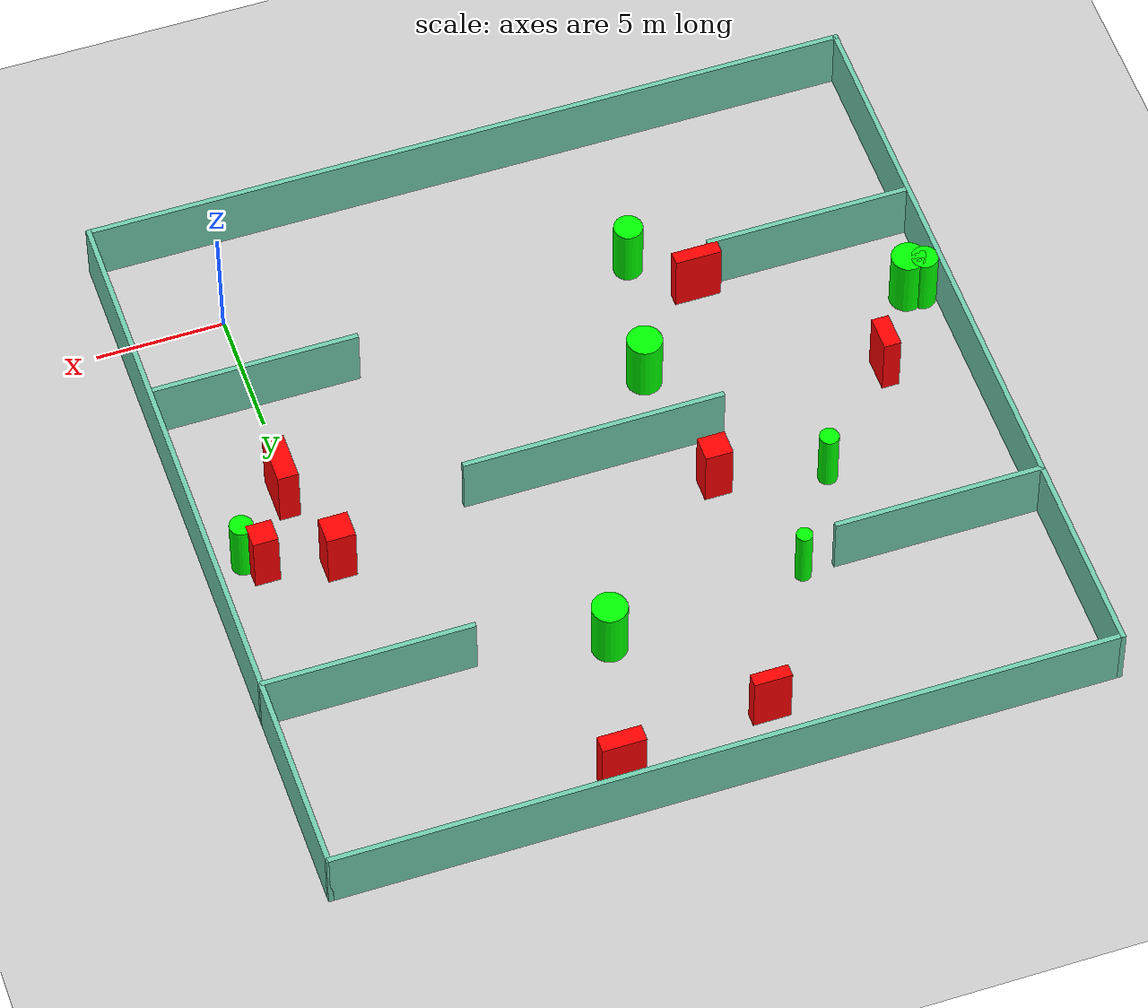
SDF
<sdf version="1.7">
 <world name="default">
  <light name="sun" type="directional">
   <pose>0 0 10 0 -0 0</pose>
   <diffuse>0.8 0.8 0.8 1</diffuse>
   <specular>0.2 0.2 0.2 1</specular>
   <attenuation>
    <range>1000</range>
    <constant>0.9</constant>
    <linear>0.01</linear>
    <quadratic>0.001</quadratic>
   </attenuation>
   <direction>-0.5 0.1 -0.9</direction>
   <spot><inner_angle>0</inner_angle><outer_angle>0</outer_angle><falloff>0</falloff></spot>
  </light>
  <model name="ground_plane">
   <static>1</static>
   <link name="link">
    <collision name="collision">
     <geometry><plane><normal>0 0 1</normal><size>100 100</size></plane></geometry>
     <surface>
      <contact><collide_bitmask>65535</collide_bitmask></contact>
      <friction><ode><mu>100</mu><mu2>50</mu2></ode></friction>
     </surface>
    </collision>
    <visual name="visual">
     <cast_shadows>0</cast_shadows>
     <geometry><plane><normal>0 0 1</normal><size>100 100</size></plane></geometry>
     <material>
      <script><uri>file://media/materials/scripts/gazebo.material</uri><name>Gazebo/Grey</name></script>
     </material>
    </visual>
   </link>
  </model>
  <gravity>0 0 -9.8</gravity>
  <magnetic_field>6e-06 2.3e-05 -4.2e-05</magnetic_field>
  <atmosphere type="adiabatic"/>
  <physics type="ode">
   <max_step_size>0.001</max_step_size>
   <real_time_factor>1</real_time_factor>
   <real_time_update_rate>1000</real_time_update_rate>
  </physics>
  <scene><ambient>0.4 0.4 0.4 1</ambient><background>0.7 0.7 0.7 1</background><shadows>1</shadows></scene>
  <spherical_coordinates>
   <surface_model>EARTH_WGS84</surface_model>
   <latitude_deg>0</latitude_deg>
   <longitude_deg>0</longitude_deg>
   <elevation>0</elevation>
   <heading_deg>0</heading_deg>
  </spherical_coordinates>
  <model name="my_base_walls">
   <link name="Wall_10">
    <collision name="Wall_10_Collision">
     <geometry><box><size>8.2 0.2 2.5</size></box></geometry>
     <pose>0 0 1.25 0 -0 0</pose>
    </collision>
    <visual name="Wall_10_Visual">
     <pose>0 0 1.25 0 -0 0</pose>
     <geometry><box><size>8.2 0.2 2.5</size></box></geometry>
     <material>
      <script><uri>file://media/materials/scripts/gazebo.material</uri><name>Gazebo/Grey</name></script>
      <ambient>0.435294 0.796078 0.67451 1</ambient>
     </material>
     <meta><layer>0</layer></meta>
    </visual>
    <pose>-11 -7 0 0 -0 0</pose>
   </link>
   <link name="Wall_12">
    <collision name="Wall_12_Collision">
     <geometry><box><size>8.2 0.2 2.5</size></box></geometry>
     <pose>0 0 1.25 0 -0 0</pose>
    </collision>
    <visual name="Wall_12_Visual">
     <pose>0 0 1.25 0 -0 0</pose>
     <geometry><box><size>8.2 0.2 2.5</size></box></geometry>
     <material>
      <script><uri>file://media/materials/scripts/gazebo.material</uri><name>Gazebo/Grey</name></script>
      <ambient>0.435294 0.796078 0.67451 1</ambient>
     </material>
     <meta><layer>0</layer></meta>
    </visual>
    <pose>-11 7 0 0 -0 0</pose>
   </link>
   <link name="Wall_14">
    <collision name="Wall_14_Collision">
     <geometry><box><size>8.2 0.2 2.5</size></box></geometry>
     <pose>0 0 1.25 0 -0 0</pose>
    </collision>
    <visual name="Wall_14_Visual">
     <pose>0 0 1.25 0 -0 0</pose>
     <geometry><box><size>8.2 0.2 2.5</size></box></geometry>
     <material>
      <script><uri>file://media/materials/scripts/gazebo.material</uri><name>Gazebo/Grey</name></script>
      <ambient>0.435294 0.796078 0.67451 1</ambient>
     </material>
     <meta><layer>0</layer></meta>
    </visual>
    <pose>11 7 0 0 -0 3.14159</pose>
   </link>
   <link name="Wall_16">
    <collision name="Wall_16_Collision">
     <geometry><box><size>10.2 0.2 2.5</size></box></geometry>
     <pose>0 0 1.25 0 -0 0</pose>
    </collision>
    <visual name="Wall_16_Visual">
     <pose>0 0 1.25 0 -0 0</pose>
     <geometry><box><size>10.2 0.2 2.5</size></box></geometry>
     <material>
      <script><uri>file://media/materials/scripts/gazebo.material</uri><name>Gazebo/Grey</name></script>
      <ambient>0.435294 0.796078 0.67451 1</ambient>
     </material>
     <meta><layer>0</layer></meta>
    </visual>
    <pose>0 0 0 0 -0 3.14159</pose>
   </link>
   <link name="Wall_2">
    <collision name="Wall_2_Collision">
     <geometry><box><size>30.2 0.2 2.5</size></box></geometry>
     <pose>0 0 1.25 0 -0 0</pose>
    </collision>
    <visual name="Wall_2_Visual">
     <pose>0 0 1.25 0 -0 0</pose>
     <geometry><box><size>30.2 0.2 2.5</size></box></geometry>
     <material>
      <script><uri>file://media/materials/scripts/gazebo.material</uri><name>Gazebo/Grey</name></script>
      <ambient>0.435294 0.796078 0.67451 1</ambient>
     </material>
     <meta><layer>0</layer></meta>
    </visual>
    <pose>0 -15 0 0 -0 3.14159</pose>
   </link>
   <link name="Wall_3">
    <collision name="Wall_3_Collision">
     <geometry><box><size>30.2 0.2 2.5</size></box></geometry>
     <pose>0 0 1.25 0 -0 0</pose>
    </collision>
    <visual name="Wall_3_Visual">
     <pose>0 0 1.25 0 -0 0</pose>
     <geometry><box><size>30.2 0.2 2.5</size></box></geometry>
     <material>
      <script><uri>file://media/materials/scripts/gazebo.material</uri><name>Gazebo/Grey</name></script>
      <ambient>0.435294 0.796078 0.67451 1</ambient>
     </material>
     <meta><layer>0</layer></meta>
    </visual>
    <pose>-15 0 0 0 -0 1.5708</pose>
   </link>
   <link name="Wall_4">
    <collision name="Wall_4_Collision">
     <geometry><box><size>30.2 0.2 2.5</size></box></geometry>
     <pose>0 0 1.25 0 -0 0</pose>
    </collision>
    <visual name="Wall_4_Visual">
     <pose>0 0 1.25 0 -0 0</pose>
     <geometry><box><size>30.2 0.2 2.5</size></box></geometry>
     <material>
      <script><uri>file://media/materials/scripts/gazebo.material</uri><name>Gazebo/Grey</name></script>
      <ambient>0.435294 0.796078 0.67451 1</ambient>
     </material>
     <meta><layer>0</layer></meta>
    </visual>
    <pose>0 15 0 0 -0 0</pose>
   </link>
   <link name="Wall_6">
    <collision name="Wall_6_Collision">
     <geometry><box><size>30.2 0.2 2.5</size></box></geometry>
     <pose>0 0 1.25 0 -0 0</pose>
    </collision>
    <visual name="Wall_6_Visual">
     <pose>0 0 1.25 0 -0 0</pose>
     <geometry><box><size>30.2 0.2 2.5</size></box></geometry>
     <material>
      <script><uri>file://media/materials/scripts/gazebo.material</uri><name>Gazebo/Grey</name></script>
      <ambient>0.435294 0.796078 0.67451 1</ambient>
     </material>
     <meta><layer>0</layer></meta>
    </visual>
    <pose>15 0 0 0 -0 1.5708</pose>
   </link>
   <link name="Wall_8">
    <collision name="Wall_8_Collision">
     <geometry><box><size>8.2 0.2 2.5</size></box></geometry>
     <pose>0 0 1.25 0 -0 0</pose>
    </collision>
    <visual name="Wall_8_Visual">
     <pose>0 0 1.25 0 -0 0</pose>
     <geometry><box><size>8.2 0.2 2.5</size></box></geometry>
     <material>
      <script><uri>file://media/materials/scripts/gazebo.material</uri><name>Gazebo/Grey</name></script>
      <ambient>0.435294 0.796078 0.67451 1</ambient>
     </material>
     <meta><layer>0</layer></meta>
    </visual>
    <pose>11 -7 0 0 -0 3.14159</pose>
   </link>
   <static>1</static>
   <pose>-11 11 0 0 -0 0</pose>
  </model>
  <model name="cylinder1">
   <static>1</static>
   <link name="link">
    <inertial>
     <mass>1</mass>
     <inertia><ixx>0.5</ixx><ixy>0</ixy><ixz>0</ixz><iyy>0.5</iyy><iyz>0</iyz><izz>1</izz></inertia>
    </inertial>
    <collision name="collision">
     <geometry><cylinder><radius>0.5656825271723132</radius><length>2.5</length></cylinder></geometry>
    </collision>
    <visual name="visual">
     <geometry><cylinder><radius>0.5656825271723132</radius><length>2.5</length></cylinder></geometry>
     <material>
      <ambient>0 1 0 1</ambient>
      <diffuse>0 1 0 1</diffuse>
      <specular>0.1 0.1 0.1 1</specular>
      <emissive>0 0 0 0</emissive>
     </material>
    </visual>
   </link>
   <pose>-15.334207022480596 2.3591838863992667 1.25 0 0 0</pose>
  </model>
  <model name="cylinder2">
   <static>1</static>
   <link name="link">
    <inertial>
     <mass>1</mass>
     <inertia><ixx>0.5</ixx><ixy>0</ixy><ixz>0</ixz><iyy>0.5</iyy><iyz>0</iyz><izz>1</izz></inertia>
    </inertial>
    <collision name="collision">
     <geometry><cylinder><radius>0.4542302674744778</radius><length>2.5</length></cylinder></geometry>
    </collision>
    <visual name="visual">
     <geometry><cylinder><radius>0.4542302674744778</radius><length>2.5</length></cylinder></geometry>
     <material>
      <ambient>0 1 0 1</ambient>
      <diffuse>0 1 0 1</diffuse>
      <specular>0.1 0.1 0.1 1</specular>
      <emissive>0 0 0 0</emissive>
     </material>
    </visual>
   </link>
   <pose>2.6054783751507493 11.013860256963248 1.25 0 0 0</pose>
  </model>
  <model name="cylinder3">
   <static>1</static>
   <link name="link">
    <inertial>
     <mass>1</mass>
     <inertia><ixx>0.5</ixx><ixy>0</ixy><ixz>0</ixz><iyy>0.5</iyy><iyz>0</iyz><izz>1</izz></inertia>
    </inertial>
    <collision name="collision">
     <geometry><cylinder><radius>0.6835945903928845</radius><length>2.5</length></cylinder></geometry>
    </collision>
    <visual name="visual">
     <geometry><cylinder><radius>0.6835945903928845</radius><length>2.5</length></cylinder></geometry>
     <material>
      <ambient>0 1 0 1</ambient>
      <diffuse>0 1 0 1</diffuse>
      <specular>0.1 0.1 0.1 1</specular>
      <emissive>0 0 0 0</emissive>
     </material>
    </visual>
   </link>
   <pose>-14.146416760996992 7.66687528191653 1.25 0 0 0</pose>
  </model>
  <model name="cylinder4">
   <static>1</static>
   <link name="link">
    <inertial>
     <mass>1</mass>
     <inertia><ixx>0.5</ixx><ixy>0</ixy><ixz>0</ixz><iyy>0.5</iyy><iyz>0</iyz><izz>1</izz></inertia>
    </inertial>
    <collision name="collision">
     <geometry><cylinder><radius>0.31301006204912324</radius><length>2.5</length></cylinder></geometry>
    </collision>
    <visual name="visual">
     <geometry><cylinder><radius>0.31301006204912324</radius><length>2.5</length></cylinder></geometry>
     <material>
      <ambient>0 1 0 1</ambient>
      <diffuse>0 1 0 1</diffuse>
      <specular>0.1 0.1 0.1 1</specular>
      <emissive>0 0 0 0</emissive>
     </material>
    </visual>
   </link>
   <pose>-16.708826074547538 18.050215788600255 1.25 0 0 0</pose>
  </model>
  <model name="cylinder5">
   <static>1</static>
   <link name="link">
    <inertial>
     <mass>1</mass>
     <inertia><ixx>0.5</ixx><ixy>0</ixy><ixz>0</ixz><iyy>0.5</iyy><iyz>0</iyz><izz>1</izz></inertia>
    </inertial>
    <collision name="collision">
     <geometry><cylinder><radius>0.6827571450023001</radius><length>2.5</length></cylinder></geometry>
    </collision>
    <visual name="visual">
     <geometry><cylinder><radius>0.6827571450023001</radius><length>2.5</length></cylinder></geometry>
     <material>
      <ambient>0 1 0 1</ambient>
      <diffuse>0 1 0 1</diffuse>
      <specular>0.1 0.1 0.1 1</specular>
      <emissive>0 0 0 0</emissive>
     </material>
    </visual>
   </link>
   <pose>-8.921634220653127 18.850742843231 1.25 0 0 0</pose>
  </model>
  <model name="cylinder6">
   <static>1</static>
   <link name="link">
    <inertial>
     <mass>1</mass>
     <inertia><ixx>0.5</ixx><ixy>0</ixy><ixz>0</ixz><iyy>0.5</iyy><iyz>0</iyz><izz>1</izz></inertia>
    </inertial>
    <collision name="collision">
     <geometry><cylinder><radius>0.37644620785606114</radius><length>2.5</length></cylinder></geometry>
    </collision>
    <visual name="visual">
     <geometry><cylinder><radius>0.37644620785606114</radius><length>2.5</length></cylinder></geometry>
     <material>
      <ambient>0 1 0 1</ambient>
      <diffuse>0 1 0 1</diffuse>
      <specular>0.1 0.1 0.1 1</specular>
      <emissive>0 0 0 0</emissive>
     </material>
    </visual>
   </link>
   <pose>-19.108521901744055 14.123001819967229 1.25 0 0 0</pose>
  </model>
  <model name="cylinder7">
   <static>1</static>
   <link name="link">
    <inertial>
     <mass>1</mass>
     <inertia><ixx>0.5</ixx><ixy>0</ixy><ixz>0</ixz><iyy>0.5</iyy><iyz>0</iyz><izz>1</izz></inertia>
    </inertial>
    <collision name="collision">
     <geometry><cylinder><radius>0.6670304134607307</radius><length>2.5</length></cylinder></geometry>
    </collision>
    <visual name="visual">
     <geometry><cylinder><radius>0.6670304134607307</radius><length>2.5</length></cylinder></geometry>
     <material>
      <ambient>0 1 0 1</ambient>
      <diffuse>0 1 0 1</diffuse>
      <specular>0.1 0.1 0.1 1</specular>
      <emissive>0 0 0 0</emissive>
     </material>
    </visual>
   </link>
   <pose>-24.854309856299533 7.106521914185434 1.25 0 0 0</pose>
  </model>
  <model name="cylinder8">
   <static>1</static>
   <link name="link">
    <inertial>
     <mass>1</mass>
     <inertia><ixx>0.5</ixx><ixy>0</ixy><ixz>0</ixz><iyy>0.5</iyy><iyz>0</iyz><izz>1</izz></inertia>
    </inertial>
    <collision name="collision">
     <geometry><cylinder><radius>0.5235648871769445</radius><length>2.5</length></cylinder></geometry>
    </collision>
    <visual name="visual">
     <geometry><cylinder><radius>0.5235648871769445</radius><length>2.5</length></cylinder></geometry>
     <material>
      <ambient>0 1 0 1</ambient>
      <diffuse>0 1 0 1</diffuse>
      <specular>0.1 0.1 0.1 1</specular>
      <emissive>0 0 0 0</emissive>
     </material>
    </visual>
   </link>
   <pose>-25.424301823788838 7.329572902212284 1.25 0 0 0</pose>
  </model>
  <model name="box1">
   <static>1</static>
   <link name="link">
    <inertial>
     <mass>1</mass>
     <inertia><ixx>0.083</ixx><ixy>0</ixy><ixz>0</ixz><iyy>0.083</iyy><iyz>0</iyz><izz>0.083</izz></inertia>
    </inertial>
    <collision name="collision">
     <geometry><box><size>0.6729447212094867 1.3741257081446454 2.5</size></box></geometry>
    </collision>
    <visual name="visual">
     <geometry><box><size>0.6729447212094867 1.3741257081446454 2.5</size></box></geometry>
     <material>
      <ambient>1 0 0 1</ambient>
      <diffuse>1 0 0 1</diffuse>
      <specular>0.1 0.1 0.1 1</specular>
      <emissive>0 0 0 0</emissive>
     </material>
    </visual>
    <sensor name="my_contact" type="contact">
     <contact><collision>box_collision</collision><topic>__default_topic__</topic></contact>
    </sensor>
   </link>
   <pose>-22.807154136622366 10.201606500134707 1.25 0 0 0</pose>
  </model>
  <model name="box2">
   <static>1</static>
   <link name="link">
    <inertial>
     <mass>1</mass>
     <inertia><ixx>0.083</ixx><ixy>0</ixy><ixz>0</ixz><iyy>0.083</iyy><iyz>0</iyz><izz>0.083</izz></inertia>
    </inertial>
    <collision name="collision">
     <geometry><box><size>0.8067836729755161 1.924558213606533 2.5</size></box></geometry>
    </collision>
    <visual name="visual">
     <geometry><box><size>0.8067836729755161 1.924558213606533 2.5</size></box></geometry>
     <material>
      <ambient>1 0 0 1</ambient>
      <diffuse>1 0 0 1</diffuse>
      <specular>0.1 0.1 0.1 1</specular>
      <emissive>0 0 0 0</emissive>
     </material>
    </visual>
    <sensor name="my_contact" type="contact">
     <contact><collision>box_collision</collision><topic>__default_topic__</topic></contact>
    </sensor>
   </link>
   <pose>0.32805266519189047 8.517846191572179 1.25 0 0 0</pose>
  </model>
  <model name="box3">
   <static>1</static>
   <link name="link">
    <inertial>
     <mass>1</mass>
     <inertia><ixx>0.083</ixx><ixy>0</ixy><ixz>0</ixz><iyy>0.083</iyy><iyz>0</iyz><izz>0.083</izz></inertia>
    </inertial>
    <collision name="collision">
     <geometry><box><size>1.1129099784940641 1.07282547616868 2.5</size></box></geometry>
    </collision>
    <visual name="visual">
     <geometry><box><size>1.1129099784940641 1.07282547616868 2.5</size></box></geometry>
     <material>
      <ambient>1 0 0 1</ambient>
      <diffuse>1 0 0 1</diffuse>
      <specular>0.1 0.1 0.1 1</specular>
      <emissive>0 0 0 0</emissive>
     </material>
    </visual>
    <sensor name="my_contact" type="contact">
     <contact><collision>box_collision</collision><topic>__default_topic__</topic></contact>
    </sensor>
   </link>
   <pose>-0.6789402976613701 12.22325850406786 1.25 0 0 0</pose>
  </model>
  <model name="box4">
   <static>1</static>
   <link name="link">
    <inertial>
     <mass>1</mass>
     <inertia><ixx>0.083</ixx><ixy>0</ixy><ixz>0</ixz><iyy>0.083</iyy><iyz>0</iyz><izz>0.083</izz></inertia>
    </inertial>
    <collision name="collision">
     <geometry><box><size>1.4530694722347992 0.5007428574547873 2.5</size></box></geometry>
    </collision>
    <visual name="visual">
     <geometry><box><size>1.4530694722347992 0.5007428574547873 2.5</size></box></geometry>
     <material>
      <ambient>1 0 0 1</ambient>
      <diffuse>1 0 0 1</diffuse>
      <specular>0.1 0.1 0.1 1</specular>
      <emissive>0 0 0 0</emissive>
     </material>
    </visual>
    <sensor name="my_contact" type="contact">
     <contact><collision>box_collision</collision><topic>__default_topic__</topic></contact>
    </sensor>
   </link>
   <pose>-13.424892446355212 23.56734887269248 1.25 0 0 0</pose>
  </model>
  <model name="box5">
   <static>1</static>
   <link name="link">
    <inertial>
     <mass>1</mass>
     <inertia><ixx>0.083</ixx><ixy>0</ixy><ixz>0</ixz><iyy>0.083</iyy><iyz>0</iyz><izz>0.083</izz></inertia>
    </inertial>
    <collision name="collision">
     <geometry><box><size>1.8181767024179107 0.5243174424005027 2.5</size></box></geometry>
    </collision>
    <visual name="visual">
     <geometry><box><size>1.8181767024179107 0.5243174424005027 2.5</size></box></geometry>
     <material>
      <ambient>1 0 0 1</ambient>
      <diffuse>1 0 0 1</diffuse>
      <specular>0.1 0.1 0.1 1</specular>
      <emissive>0 0 0 0</emissive>
     </material>
    </visual>
    <sensor name="my_contact" type="contact">
     <contact><collision>box_collision</collision><topic>__default_topic__</topic></contact>
    </sensor>
   </link>
   <pose>-17.370578370111943 4.352530353417654 1.25 0 0 0</pose>
  </model>
  <model name="box6">
   <static>1</static>
   <link name="link">
    <inertial>
     <mass>1</mass>
     <inertia><ixx>0.083</ixx><ixy>0</ixy><ixz>0</ixz><iyy>0.083</iyy><iyz>0</iyz><izz>0.083</izz></inertia>
    </inertial>
    <collision name="collision">
     <geometry><box><size>1.6952421993572877 0.6569559221100152 2.5</size></box></geometry>
    </collision>
    <visual name="visual">
     <geometry><box><size>1.6952421993572877 0.6569559221100152 2.5</size></box></geometry>
     <material>
      <ambient>1 0 0 1</ambient>
      <diffuse>1 0 0 1</diffuse>
      <specular>0.1 0.1 0.1 1</specular>
      <emissive>0 0 0 0</emissive>
     </material>
    </visual>
    <sensor name="my_contact" type="contact">
     <contact><collision>box_collision</collision><topic>__default_topic__</topic></contact>
    </sensor>
   </link>
   <pose>-7.453793460793843 24.43848817901227 1.25 0 0 0</pose>
  </model>
  <model name="box7">
   <static>1</static>
   <link name="link">
    <inertial>
     <mass>1</mass>
     <inertia><ixx>0.083</ixx><ixy>0</ixy><ixz>0</ixz><iyy>0.083</iyy><iyz>0</iyz><izz>0.083</izz></inertia>
    </inertial>
    <collision name="collision">
     <geometry><box><size>0.9786811811992839 0.9276841146316527 2.5</size></box></geometry>
    </collision>
    <visual name="visual">
     <geometry><box><size>0.9786811811992839 0.9276841146316527 2.5</size></box></geometry>
     <material>
      <ambient>1 0 0 1</ambient>
      <diffuse>1 0 0 1</diffuse>
      <specular>0.1 0.1 0.1 1</specular>
      <emissive>0 0 0 0</emissive>
     </material>
    </visual>
    <sensor name="my_contact" type="contact">
     <contact><collision>box_collision</collision><topic>__default_topic__</topic></contact>
    </sensor>
   </link>
   <pose>1.9846342109283484 11.590583228451056 1.25 0 0 0</pose>
  </model>
  <model name="box8">
   <static>1</static>
   <link name="link">
    <inertial>
     <mass>1</mass>
     <inertia><ixx>0.083</ixx><ixy>0</ixy><ixz>0</ixz><iyy>0.083</iyy><iyz>0</iyz><izz>0.083</izz></inertia>
    </inertial>
    <collision name="collision">
     <geometry><box><size>1.0744641828321655 0.9921527942284224 2.5</size></box></geometry>
    </collision>
    <visual name="visual">
     <geometry><box><size>1.0744641828321655 0.9921527942284224 2.5</size></box></geometry>
     <material>
      <ambient>1 0 0 1</ambient>
      <diffuse>1 0 0 1</diffuse>
      <specular>0.1 0.1 0.1 1</specular>
      <emissive>0 0 0 0</emissive>
     </material>
    </visual>
    <sensor name="my_contact" type="contact">
     <contact><collision>box_collision</collision><topic>__default_topic__</topic></contact>
    </sensor>
   </link>
   <pose>-14.978482183863996 13.171456574663786 1.25 0 0 0</pose>
  </model>
 </world>
</sdf>
